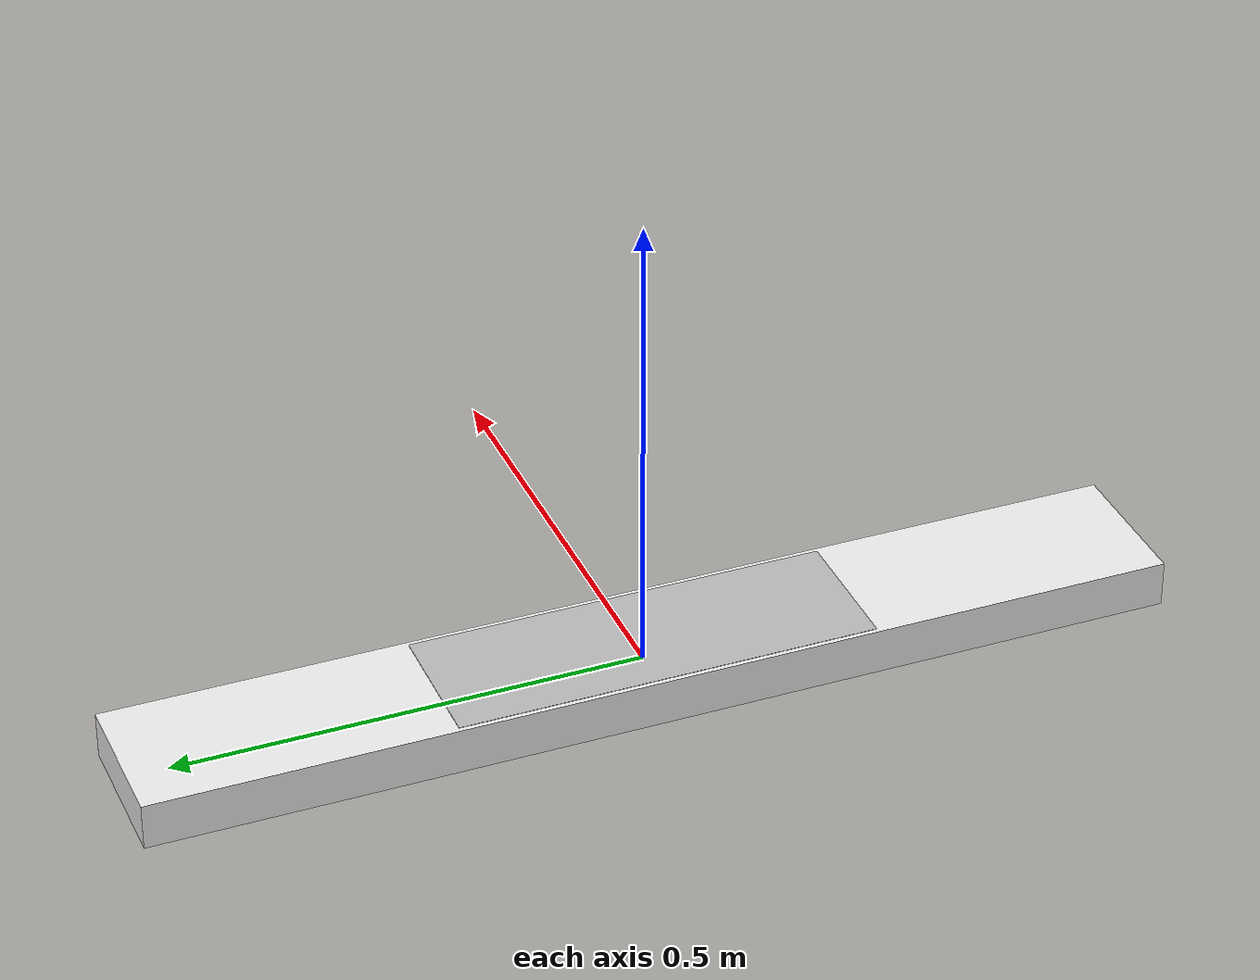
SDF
<?xml version="1.0" ?>
<sdf version="1.5">
  <model name="myobject">
    <pose>0 0 0 0 0 0</pose>
    <static>false</static>

    <link name="link">
      <gravity>0</gravity>
      <visual name="visual">
        <pose>0 0 0 0 0 0</pose>
        <geometry>
          <box>
            <size>0.16 1.1 0.05</size>
          </box>
        </geometry>
        <material>
          <script>
            <uri>file://media/materials/scripts/gazebo.material</uri>
            <name>Gazebo/White</name>
          </script>
        </material>
      </visual>
    </link>

    <link name="linklogo">
      <gravity>0</gravity>
      <visual name="visual">
        <pose>0 0 0.0205 0 0 3.1415</pose>
        <geometry>
          <box>
            <size>0.15 0.45 0.01</size>
          </box>
        </geometry>
        <material>
          <script>
            <uri>/home/alessandro/vpn_project/VPN_Robotics/ros/src/cooperative_robotics/models/object/mytexture.material</uri>
            <name>Gazebo/My</name>
          </script>
        </material>
      </visual>
    </link>
  </model>
</sdf>
